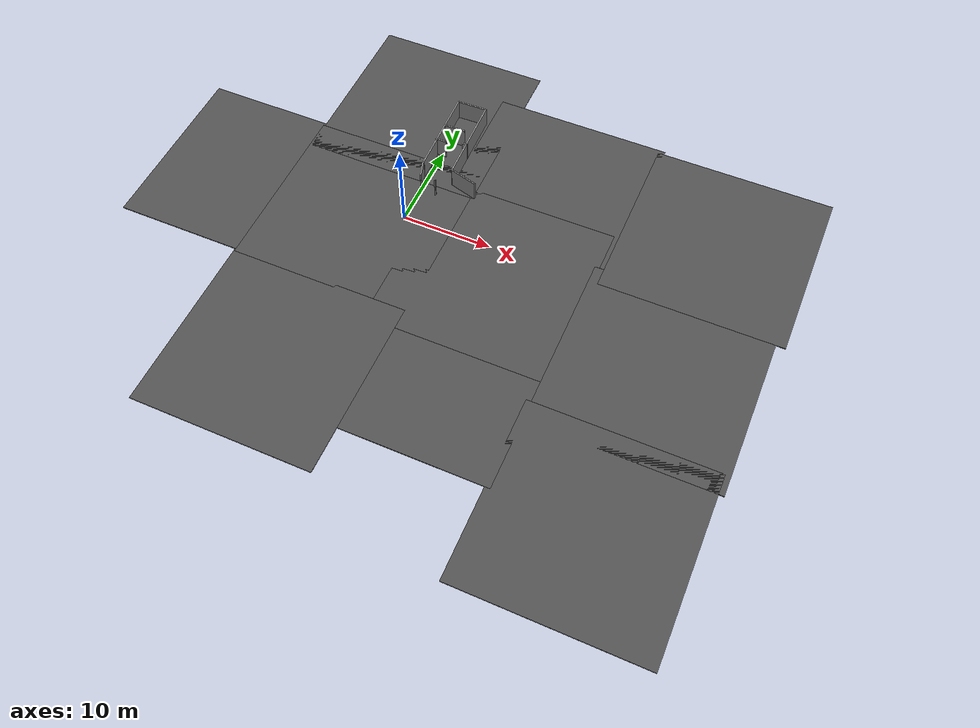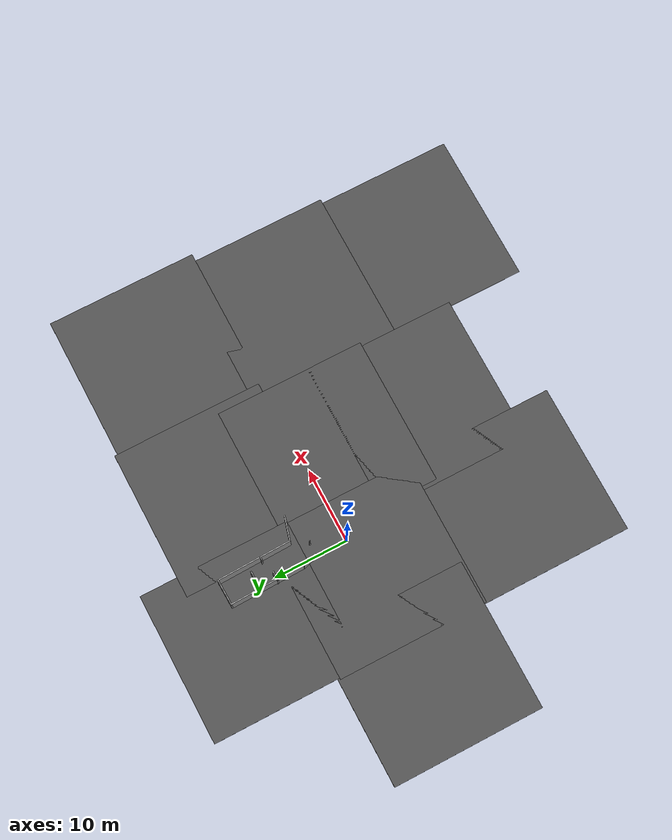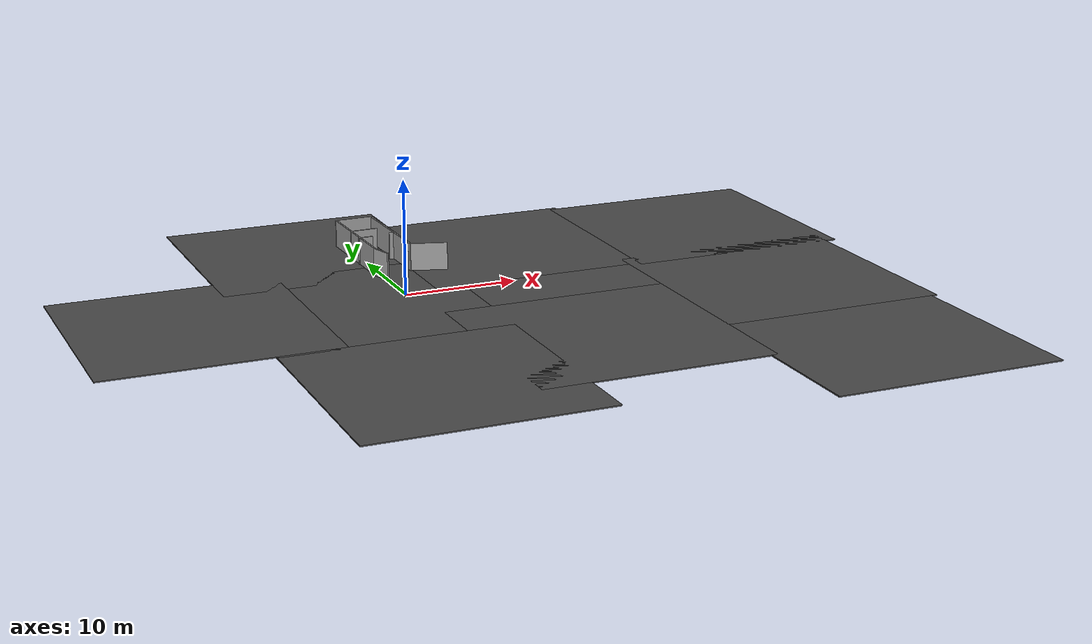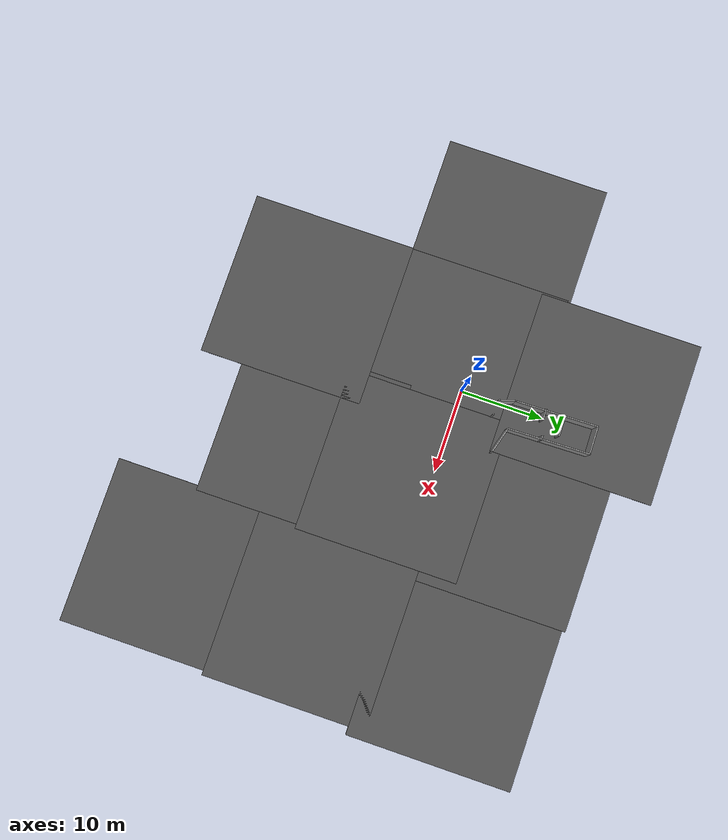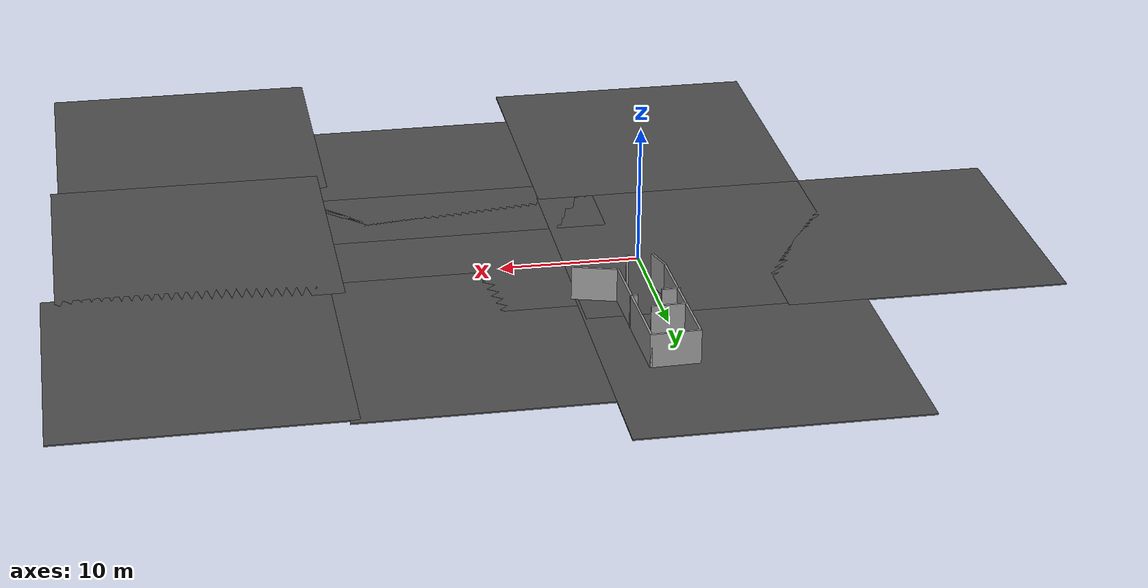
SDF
<sdf version="1.6">
 <world name="default">
  <light name="sun" type="directional">
   <pose>0 0 10 0 -0 0</pose>
   <diffuse>0.8 0.8 0.8 1</diffuse>
   <specular>0.2 0.2 0.2 1</specular>
   <attenuation>
    <range>1000</range>
    <constant>0.9</constant>
    <linear>0.01</linear>
    <quadratic>0.001</quadratic>
   </attenuation>
   <direction>-0.5 0.1 -0.9</direction>
  </light>
  <gravity>0 0 -9.8</gravity>
  <magnetic_field>6e-06 2.3e-05 -4.2e-05</magnetic_field>
  <atmosphere type="adiabatic"/>
  <physics name="default_physics" default="0" type="ode">
   <max_step_size>0.001</max_step_size>
   <real_time_factor>1</real_time_factor>
   <real_time_update_rate>1000</real_time_update_rate>
  </physics>
  <scene><ambient>0.4 0.4 0.4 1</ambient><background>0.7 0.7 0.7 1</background><shadows>1</shadows></scene>
  <audio><device>default</device></audio>
  <spherical_coordinates>
   <surface_model>EARTH_WGS84</surface_model>
   <latitude_deg>0</latitude_deg>
   <longitude_deg>0</longitude_deg>
   <elevation>0</elevation>
   <heading_deg>0</heading_deg>
  </spherical_coordinates>
  <model name="asphalt_plane">
   <static>1</static>
   <link name="link">
    <collision name="collision"><geometry><box><size>20 20 0.1</size></box></geometry></collision>
    <visual name="visual">
     <cast_shadows>0</cast_shadows>
     <geometry><box><size>20 20 0.1</size></box></geometry>
     <material>
      <script>
       <uri>model://asphalt_plane/materials/scripts</uri>
       <uri>model://asphalt_plane/materials/textures</uri>
       <name>vrc/asphalt</name>
      </script>
     </material>
    </visual>
   </link>
   <pose>-4.64285 -21.04 0 0 -0 0</pose>
  </model>
  <model name="asphalt_plane_clone">
   <static>1</static>
   <link name="link">
    <collision name="collision"><geometry><box><size>20 20 0.1</size></box></geometry></collision>
    <visual name="visual">
     <cast_shadows>0</cast_shadows>
     <geometry><box><size>20 20 0.1</size></box></geometry>
     <material>
      <script>
       <uri>model://asphalt_plane/materials/scripts</uri>
       <uri>model://asphalt_plane/materials/textures</uri>
       <name>vrc/asphalt</name>
      </script>
     </material>
    </visual>
   </link>
   <pose>-4.56138 -1.36583 0 0 -0 0</pose>
  </model>
  <model name="asphalt_plane_clone_0">
   <static>1</static>
   <link name="link">
    <collision name="collision"><geometry><box><size>20 20 0.1</size></box></geometry></collision>
    <visual name="visual">
     <cast_shadows>0</cast_shadows>
     <geometry><box><size>20 20 0.1</size></box></geometry>
     <material>
      <script>
       <uri>model://asphalt_plane/materials/scripts</uri>
       <uri>model://asphalt_plane/materials/textures</uri>
       <name>vrc/asphalt</name>
      </script>
     </material>
    </visual>
   </link>
   <pose>-4.35704 15.385 0 0 -0 0</pose>
  </model>
  <model name="asphalt_plane_clone_1">
   <static>1</static>
   <link name="link">
    <collision name="collision"><geometry><box><size>20 20 0.1</size></box></geometry></collision>
    <visual name="visual">
     <cast_shadows>0</cast_shadows>
     <geometry><box><size>20 20 0.1</size></box></geometry>
     <material>
      <script>
       <uri>model://asphalt_plane/materials/scripts</uri>
       <uri>model://asphalt_plane/materials/textures</uri>
       <name>vrc/asphalt</name>
      </script>
     </material>
    </visual>
   </link>
   <pose>12.919 10.3967 0 0 -0 0</pose>
  </model>
  <model name="asphalt_plane_clone_2">
   <static>1</static>
   <link name="link">
    <collision name="collision"><geometry><box><size>20 20 0.1</size></box></geometry></collision>
    <visual name="visual">
     <cast_shadows>0</cast_shadows>
     <geometry><box><size>20 20 0.1</size></box></geometry>
     <material>
      <script>
       <uri>model://asphalt_plane/materials/scripts</uri>
       <uri>model://asphalt_plane/materials/textures</uri>
       <name>vrc/asphalt</name>
      </script>
     </material>
    </visual>
   </link>
   <pose>11.7465 -3.39792 0 0 -0 0</pose>
  </model>
  <model name="asphalt_plane_clone_3">
   <static>1</static>
   <link name="link">
    <collision name="collision"><geometry><box><size>20 20 0.1</size></box></geometry></collision>
    <visual name="visual">
     <cast_shadows>0</cast_shadows>
     <geometry><box><size>20 20 0.1</size></box></geometry>
     <material>
      <script>
       <uri>model://asphalt_plane/materials/scripts</uri>
       <uri>model://asphalt_plane/materials/textures</uri>
       <name>vrc/asphalt</name>
      </script>
     </material>
    </visual>
   </link>
   <pose>11.2537 -15.8872 0 0 -0 0</pose>
  </model>
  <model name="asphalt_plane_clone_clone">
   <static>1</static>
   <link name="link">
    <collision name="collision"><geometry><box><size>20 20 0.1</size></box></geometry></collision>
    <visual name="visual">
     <cast_shadows>0</cast_shadows>
     <geometry><box><size>20 20 0.1</size></box></geometry>
     <material>
      <script>
       <uri>model://asphalt_plane/materials/scripts</uri>
       <uri>model://asphalt_plane/materials/textures</uri>
       <name>vrc/asphalt</name>
      </script>
     </material>
    </visual>
   </link>
   <pose>31.226 -8.00237 0 0 -0 0</pose>
  </model>
  <model name="asphalt_plane_clone_clone_0">
   <static>1</static>
   <link name="link">
    <collision name="collision"><geometry><box><size>20 20 0.1</size></box></geometry></collision>
    <visual name="visual">
     <cast_shadows>0</cast_shadows>
     <geometry><box><size>20 20 0.1</size></box></geometry>
     <material>
      <script>
       <uri>model://asphalt_plane/materials/scripts</uri>
       <uri>model://asphalt_plane/materials/textures</uri>
       <name>vrc/asphalt</name>
      </script>
     </material>
    </visual>
   </link>
   <pose>30.6756 -25.7849 0 0 -0 0</pose>
  </model>
  <model name="asphalt_plane_clone_clone_1">
   <static>1</static>
   <link name="link">
    <collision name="collision"><geometry><box><size>20 20 0.1</size></box></geometry></collision>
    <visual name="visual">
     <cast_shadows>0</cast_shadows>
     <geometry><box><size>20 20 0.1</size></box></geometry>
     <material>
      <script>
       <uri>model://asphalt_plane/materials/scripts</uri>
       <uri>model://asphalt_plane/materials/textures</uri>
       <name>vrc/asphalt</name>
      </script>
     </material>
    </visual>
   </link>
   <pose>32.2225 10.0057 0 0 -0 0</pose>
  </model>
  <model name="asphalt_plane_clone_clone_2">
   <static>1</static>
   <link name="link">
    <collision name="collision"><geometry><box><size>20 20 0.1</size></box></geometry></collision>
    <visual name="visual">
     <cast_shadows>0</cast_shadows>
     <geometry><box><size>20 20 0.1</size></box></geometry>
     <material>
      <script>
       <uri>model://asphalt_plane/materials/scripts</uri>
       <uri>model://asphalt_plane/materials/textures</uri>
       <name>vrc/asphalt</name>
      </script>
     </material>
    </visual>
   </link>
   <pose>-18.7535 -1.06566 0 0 -0 0</pose>
  </model>
  <model name="simple_maze_open">
   <link name="Wall_0">
    <pose>0.008428 1.67 0 0 -0 0</pose>
    <visual name="Wall_0_Visual">
     <pose>0 0 1.25 0 -0 0</pose>
     <geometry><box><size>10 0.15 2.5</size></box></geometry>
     <material>
      <script><uri>file://media/materials/scripts/gazebo.material</uri><name>Gazebo/Grey</name></script>
      <ambient>1 1 1 1</ambient>
     </material>
     <meta><layer>0</layer></meta>
    </visual>
    <collision name="Wall_0_Collision">
     <pose>0 0 1.25 0 -0 0</pose>
     <geometry><box><size>10 0.15 2.5</size></box></geometry>
     <surface>
      <friction>
       <ode><mu>1</mu><mu2>1</mu2><fdir1>0 0 0</fdir1><slip1>0</slip1><slip2>0</slip2></ode>
       <torsional>
        <coefficient>1</coefficient>
        <patch_radius>0</patch_radius>
        <surface_radius>0</surface_radius>
        <use_patch_radius>1</use_patch_radius>
        <ode><slip>0</slip></ode>
       </torsional>
      </friction>
      <bounce><restitution_coefficient>0</restitution_coefficient><threshold>1e+06</threshold></bounce>
      <contact>
       <collide_without_contact>0</collide_without_contact>
       <collide_without_contact_bitmask>1</collide_without_contact_bitmask>
       <collide_bitmask>1</collide_bitmask>
       <ode>
        <soft_cfm>0</soft_cfm>
        <soft_erp>0.2</soft_erp>
        <kp>1e+13</kp>
        <kd>1</kd>
        <max_vel>0.01</max_vel>
        <min_depth>0</min_depth>
       </ode>
       <bullet>
        <split_impulse>1</split_impulse>
        <split_impulse_penetration_threshold>-0.01</split_impulse_penetration_threshold>
        <soft_cfm>0</soft_cfm>
        <soft_erp>0.2</soft_erp>
        <kp>1e+13</kp>
        <kd>1</kd>
       </bullet>
      </contact>
     </surface>
    </collision>
   </link>
   <link name="Wall_1">
    <pose>4.93343 -0.004999 0 0 0 -1.5708</pose>
    <visual name="Wall_1_Visual">
     <pose>0 0 1.25 0 -0 0</pose>
     <geometry><box><size>3.5 0.15 2.5</size></box></geometry>
     <material>
      <script><uri>file://media/materials/scripts/gazebo.material</uri><name>Gazebo/Grey</name></script>
      <ambient>1 1 1 1</ambient>
     </material>
     <meta><layer>0</layer></meta>
    </visual>
    <collision name="Wall_1_Collision">
     <pose>0 0 1.25 0 -0 0</pose>
     <geometry><box><size>3.5 0.15 2.5</size></box></geometry>
     <surface>
      <friction>
       <ode><mu>1</mu><mu2>1</mu2><fdir1>0 0 0</fdir1><slip1>0</slip1><slip2>0</slip2></ode>
       <torsional>
        <coefficient>1</coefficient>
        <patch_radius>0</patch_radius>
        <surface_radius>0</surface_radius>
        <use_patch_radius>1</use_patch_radius>
        <ode><slip>0</slip></ode>
       </torsional>
      </friction>
      <bounce><restitution_coefficient>0</restitution_coefficient><threshold>1e+06</threshold></bounce>
      <contact>
       <collide_without_contact>0</collide_without_contact>
       <collide_without_contact_bitmask>1</collide_without_contact_bitmask>
       <collide_bitmask>1</collide_bitmask>
       <ode>
        <soft_cfm>0</soft_cfm>
        <soft_erp>0.2</soft_erp>
        <kp>1e+13</kp>
        <kd>1</kd>
        <max_vel>0.01</max_vel>
        <min_depth>0</min_depth>
       </ode>
       <bullet>
        <split_impulse>1</split_impulse>
        <split_impulse_penetration_threshold>-0.01</split_impulse_penetration_threshold>
        <soft_cfm>0</soft_cfm>
        <soft_erp>0.2</soft_erp>
        <kp>1e+13</kp>
        <kd>1</kd>
       </bullet>
      </contact>
     </surface>
    </collision>
   </link>
   <link name="Wall_11">
    <pose>0.963428 0.505 0 0 0 -1.5708</pose>
    <visual name="Wall_11_Visual">
     <pose>0 0 1.25 0 -0 0</pose>
     <geometry><box><size>2.5 0.15 2.5</size></box></geometry>
     <material>
      <script><uri>file://media/materials/scripts/gazebo.material</uri><name>Gazebo/Grey</name></script>
      <ambient>1 1 1 1</ambient>
     </material>
     <meta><layer>0</layer></meta>
    </visual>
    <collision name="Wall_11_Collision">
     <pose>0 0 1.25 0 -0 0</pose>
     <geometry><box><size>2.5 0.15 2.5</size></box></geometry>
     <surface>
      <friction>
       <ode><mu>1</mu><mu2>1</mu2><fdir1>0 0 0</fdir1><slip1>0</slip1><slip2>0</slip2></ode>
       <torsional>
        <coefficient>1</coefficient>
        <patch_radius>0</patch_radius>
        <surface_radius>0</surface_radius>
        <use_patch_radius>1</use_patch_radius>
        <ode><slip>0</slip></ode>
       </torsional>
      </friction>
      <bounce><restitution_coefficient>0</restitution_coefficient><threshold>1e+06</threshold></bounce>
      <contact>
       <collide_without_contact>0</collide_without_contact>
       <collide_without_contact_bitmask>1</collide_without_contact_bitmask>
       <collide_bitmask>1</collide_bitmask>
       <ode>
        <soft_cfm>0</soft_cfm>
        <soft_erp>0.2</soft_erp>
        <kp>1e+13</kp>
        <kd>1</kd>
        <max_vel>0.01</max_vel>
        <min_depth>0</min_depth>
       </ode>
       <bullet>
        <split_impulse>1</split_impulse>
        <split_impulse_penetration_threshold>-0.01</split_impulse_penetration_threshold>
        <soft_cfm>0</soft_cfm>
        <soft_erp>0.2</soft_erp>
        <kp>1e+13</kp>
        <kd>1</kd>
       </bullet>
      </contact>
     </surface>
    </collision>
   </link>
   <link name="Wall_12">
    <pose>-5.38992 -3.20539 0 0 -0 1.26969</pose>
    <visual name="Wall_12_Visual">
     <pose>0 0 1.25 0 -0 0</pose>
     <geometry><box><size>3.25 0.15 2.5</size></box></geometry>
     <material>
      <script><uri>file://media/materials/scripts/gazebo.material</uri><name>Gazebo/Grey</name></script>
      <ambient>1 1 1 1</ambient>
     </material>
     <meta><layer>0</layer></meta>
    </visual>
    <collision name="Wall_12_Collision">
     <pose>0 0 1.25 0 -0 0</pose>
     <geometry><box><size>3.25 0.15 2.5</size></box></geometry>
     <surface>
      <friction>
       <ode><mu>1</mu><mu2>1</mu2><fdir1>0 0 0</fdir1><slip1>0</slip1><slip2>0</slip2></ode>
       <torsional>
        <coefficient>1</coefficient>
        <patch_radius>0</patch_radius>
        <surface_radius>0</surface_radius>
        <use_patch_radius>1</use_patch_radius>
        <ode><slip>0</slip></ode>
       </torsional>
      </friction>
      <bounce><restitution_coefficient>0</restitution_coefficient><threshold>1e+06</threshold></bounce>
      <contact>
       <collide_without_contact>0</collide_without_contact>
       <collide_without_contact_bitmask>1</collide_without_contact_bitmask>
       <collide_bitmask>1</collide_bitmask>
       <ode>
        <soft_cfm>0</soft_cfm>
        <soft_erp>0.2</soft_erp>
        <kp>1e+13</kp>
        <kd>1</kd>
        <max_vel>0.01</max_vel>
        <min_depth>0</min_depth>
       </ode>
       <bullet>
        <split_impulse>1</split_impulse>
        <split_impulse_penetration_threshold>-0.01</split_impulse_penetration_threshold>
        <soft_cfm>0</soft_cfm>
        <soft_erp>0.2</soft_erp>
        <kp>1e+13</kp>
        <kd>1</kd>
       </bullet>
      </contact>
     </surface>
    </collision>
   </link>
   <link name="Wall_2">
    <pose>0.008428 -1.68 0 0 -0 3.14159</pose>
    <visual name="Wall_2_Visual">
     <pose>0 0 1.25 0 -0 0</pose>
     <geometry><box><size>10 0.15 2.5</size></box></geometry>
     <material>
      <script><uri>file://media/materials/scripts/gazebo.material</uri><name>Gazebo/Grey</name></script>
      <ambient>1 1 1 1</ambient>
     </material>
     <meta><layer>0</layer></meta>
    </visual>
    <collision name="Wall_2_Collision">
     <pose>0 0 1.25 0 -0 0</pose>
     <geometry><box><size>10 0.15 2.5</size></box></geometry>
     <surface>
      <friction>
       <ode><mu>1</mu><mu2>1</mu2><fdir1>0 0 0</fdir1><slip1>0</slip1><slip2>0</slip2></ode>
       <torsional>
        <coefficient>1</coefficient>
        <patch_radius>0</patch_radius>
        <surface_radius>0</surface_radius>
        <use_patch_radius>1</use_patch_radius>
        <ode><slip>0</slip></ode>
       </torsional>
      </friction>
      <bounce><restitution_coefficient>0</restitution_coefficient><threshold>1e+06</threshold></bounce>
      <contact>
       <collide_without_contact>0</collide_without_contact>
       <collide_without_contact_bitmask>1</collide_without_contact_bitmask>
       <collide_bitmask>1</collide_bitmask>
       <ode>
        <soft_cfm>0</soft_cfm>
        <soft_erp>0.2</soft_erp>
        <kp>1e+13</kp>
        <kd>1</kd>
        <max_vel>0.01</max_vel>
        <min_depth>0</min_depth>
       </ode>
       <bullet>
        <split_impulse>1</split_impulse>
        <split_impulse_penetration_threshold>-0.01</split_impulse_penetration_threshold>
        <soft_cfm>0</soft_cfm>
        <soft_erp>0.2</soft_erp>
        <kp>1e+13</kp>
        <kd>1</kd>
       </bullet>
      </contact>
     </surface>
    </collision>
   </link>
   <link name="Wall_4">
    <pose>-5.91386 1.45839 0 0 -0 0.261799</pose>
    <visual name="Wall_4_Visual">
     <pose>0 0 1.25 0 -0 0</pose>
     <geometry><box><size>2 0.15 2.5</size></box></geometry>
     <material>
      <script><uri>file://media/materials/scripts/gazebo.material</uri><name>Gazebo/Grey</name></script>
      <ambient>1 1 1 1</ambient>
     </material>
     <meta><layer>0</layer></meta>
    </visual>
    <collision name="Wall_4_Collision">
     <pose>0 0 1.25 0 -0 0</pose>
     <geometry><box><size>2 0.15 2.5</size></box></geometry>
     <surface>
      <friction>
       <ode><mu>1</mu><mu2>1</mu2><fdir1>0 0 0</fdir1><slip1>0</slip1><slip2>0</slip2></ode>
       <torsional>
        <coefficient>1</coefficient>
        <patch_radius>0</patch_radius>
        <surface_radius>0</surface_radius>
        <use_patch_radius>1</use_patch_radius>
        <ode><slip>0</slip></ode>
       </torsional>
      </friction>
      <bounce><restitution_coefficient>0</restitution_coefficient><threshold>1e+06</threshold></bounce>
      <contact>
       <collide_without_contact>0</collide_without_contact>
       <collide_without_contact_bitmask>1</collide_without_contact_bitmask>
       <collide_bitmask>1</collide_bitmask>
       <ode>
        <soft_cfm>0</soft_cfm>
        <soft_erp>0.2</soft_erp>
        <kp>1e+13</kp>
        <kd>1</kd>
        <max_vel>0.01</max_vel>
        <min_depth>0</min_depth>
       </ode>
       <bullet>
        <split_impulse>1</split_impulse>
        <split_impulse_penetration_threshold>-0.01</split_impulse_penetration_threshold>
        <soft_cfm>0</soft_cfm>
        <soft_erp>0.2</soft_erp>
        <kp>1e+13</kp>
        <kd>1</kd>
       </bullet>
      </contact>
     </surface>
    </collision>
   </link>
   <link name="Wall_5">
    <pose>-6.98836 -0.545705 -0.0081 0 -0 0</pose>
    <visual name="Wall_5_Visual">
     <pose>0 0 1.25 0 -0 0</pose>
     <geometry><box><size>0.15 0.15 2.5</size></box></geometry>
     <material>
      <script><uri>file://media/materials/scripts/gazebo.material</uri><name>Gazebo/Grey</name></script>
      <ambient>1 1 1 1</ambient>
     </material>
     <meta><layer>0</layer></meta>
    </visual>
    <collision name="Wall_5_Collision">
     <pose>0 0 1.25 0 -0 0</pose>
     <geometry><box><size>0.15 0.15 2.5</size></box></geometry>
     <surface>
      <friction>
       <ode><mu>1</mu><mu2>1</mu2><fdir1>0 0 0</fdir1><slip1>0</slip1><slip2>0</slip2></ode>
       <torsional>
        <coefficient>1</coefficient>
        <patch_radius>0</patch_radius>
        <surface_radius>0</surface_radius>
        <use_patch_radius>1</use_patch_radius>
        <ode><slip>0</slip></ode>
       </torsional>
      </friction>
      <bounce><restitution_coefficient>0</restitution_coefficient><threshold>1e+06</threshold></bounce>
      <contact>
       <collide_without_contact>0</collide_without_contact>
       <collide_without_contact_bitmask>1</collide_without_contact_bitmask>
       <collide_bitmask>1</collide_bitmask>
       <ode>
        <soft_cfm>0</soft_cfm>
        <soft_erp>0.2</soft_erp>
        <kp>1e+13</kp>
        <kd>1</kd>
        <max_vel>0.01</max_vel>
        <min_depth>0</min_depth>
       </ode>
       <bullet>
        <split_impulse>1</split_impulse>
        <split_impulse_penetration_threshold>-0.01</split_impulse_penetration_threshold>
        <soft_cfm>0</soft_cfm>
        <soft_erp>0.2</soft_erp>
        <kp>1e+13</kp>
        <kd>1</kd>
       </bullet>
      </contact>
     </surface>
    </collision>
   </link>
   <link name="Wall_7">
    <pose>-1.33801 1.19628 0 0 0 -1.5708</pose>
    <inertial>
     <inertia><ixx>0</ixx><ixy>0</ixy><ixz>0</ixz><iyy>0</iyy><iyz>0</iyz><izz>0</izz></inertia>
     <mass>0</mass>
    </inertial>
    <visual name="Wall_7_Visual">
     <pose>0 0 1.25 0 -0 0</pose>
     <geometry><box><size>1.30616 0.15 2.5</size></box></geometry>
     <material>
      <script><uri>file://media/materials/scripts/gazebo.material</uri><name>Gazebo/Grey</name></script>
      <ambient>1 1 1 1</ambient>
     </material>
     <meta><layer>0</layer></meta>
    </visual>
    <collision name="Wall_7_Collision">
     <pose>0 0 1.25 0 -0 0</pose>
     <geometry><box><size>1.30616 0.15 2.5</size></box></geometry>
     <surface>
      <friction>
       <ode><mu>1</mu><mu2>1</mu2><fdir1>0 0 0</fdir1><slip1>0</slip1><slip2>0</slip2></ode>
       <torsional>
        <coefficient>1</coefficient>
        <patch_radius>0</patch_radius>
        <surface_radius>0</surface_radius>
        <use_patch_radius>1</use_patch_radius>
        <ode><slip>0</slip></ode>
       </torsional>
      </friction>
      <bounce><restitution_coefficient>0</restitution_coefficient><threshold>1e+06</threshold></bounce>
      <contact>
       <collide_without_contact>0</collide_without_contact>
       <collide_without_contact_bitmask>1</collide_without_contact_bitmask>
       <collide_bitmask>1</collide_bitmask>
       <ode>
        <soft_cfm>0</soft_cfm>
        <soft_erp>0.2</soft_erp>
        <kp>1e+13</kp>
        <kd>1</kd>
        <max_vel>0.01</max_vel>
        <min_depth>0</min_depth>
       </ode>
       <bullet>
        <split_impulse>1</split_impulse>
        <split_impulse_penetration_threshold>-0.01</split_impulse_penetration_threshold>
        <soft_cfm>0</soft_cfm>
        <soft_erp>0.2</soft_erp>
        <kp>1e+13</kp>
        <kd>1</kd>
       </bullet>
      </contact>
     </surface>
    </collision>
   </link>
   <link name="Wall_9">
    <pose>-0.847939 -1.50773 0 0 -0 1.5708</pose>
    <inertial>
     <inertia><ixx>0</ixx><ixy>0</ixy><ixz>0</ixz><iyy>0</iyy><iyz>0</iyz><izz>0</izz></inertia>
     <mass>0</mass>
    </inertial>
    <visual name="Wall_9_Visual">
     <pose>0 0 1.25 0 -0 0</pose>
     <geometry><box><size>0.553947 0.15 2.5</size></box></geometry>
     <material>
      <script><uri>file://media/materials/scripts/gazebo.material</uri><name>Gazebo/Grey</name></script>
      <ambient>1 1 1 1</ambient>
     </material>
     <meta><layer>0</layer></meta>
    </visual>
    <collision name="Wall_9_Collision">
     <pose>0 0 1.25 0 -0 0</pose>
     <geometry><box><size>0.553947 0.15 2.5</size></box></geometry>
     <surface>
      <friction>
       <ode><mu>1</mu><mu2>1</mu2><fdir1>0 0 0</fdir1><slip1>0</slip1><slip2>0</slip2></ode>
       <torsional>
        <coefficient>1</coefficient>
        <patch_radius>0</patch_radius>
        <surface_radius>0</surface_radius>
        <use_patch_radius>1</use_patch_radius>
        <ode><slip>0</slip></ode>
       </torsional>
      </friction>
      <bounce><restitution_coefficient>0</restitution_coefficient><threshold>1e+06</threshold></bounce>
      <contact>
       <collide_without_contact>0</collide_without_contact>
       <collide_without_contact_bitmask>1</collide_without_contact_bitmask>
       <collide_bitmask>1</collide_bitmask>
       <ode>
        <soft_cfm>0</soft_cfm>
        <soft_erp>0.2</soft_erp>
        <kp>1e+13</kp>
        <kd>1</kd>
        <max_vel>0.01</max_vel>
        <min_depth>0</min_depth>
       </ode>
       <bullet>
        <split_impulse>1</split_impulse>
        <split_impulse_penetration_threshold>-0.01</split_impulse_penetration_threshold>
        <soft_cfm>0</soft_cfm>
        <soft_erp>0.2</soft_erp>
        <kp>1e+13</kp>
        <kd>1</kd>
       </bullet>
      </contact>
     </surface>
    </collision>
   </link>
   <static>1</static>
   <pose>0.99057 11.222 0 0 -0 1.5962</pose>
  </model>
 </world>
</sdf>
